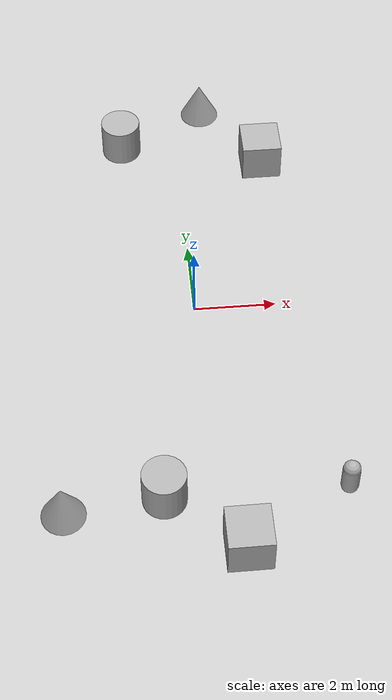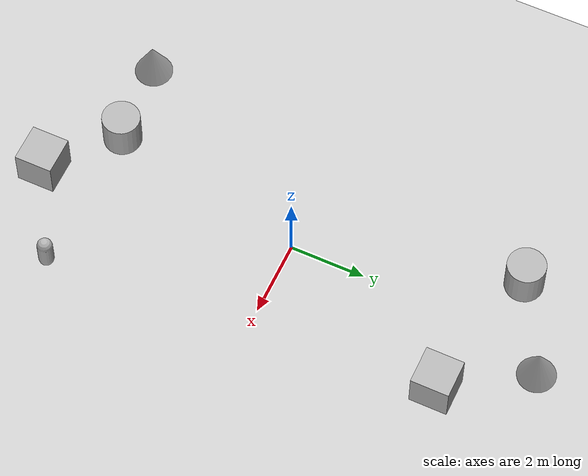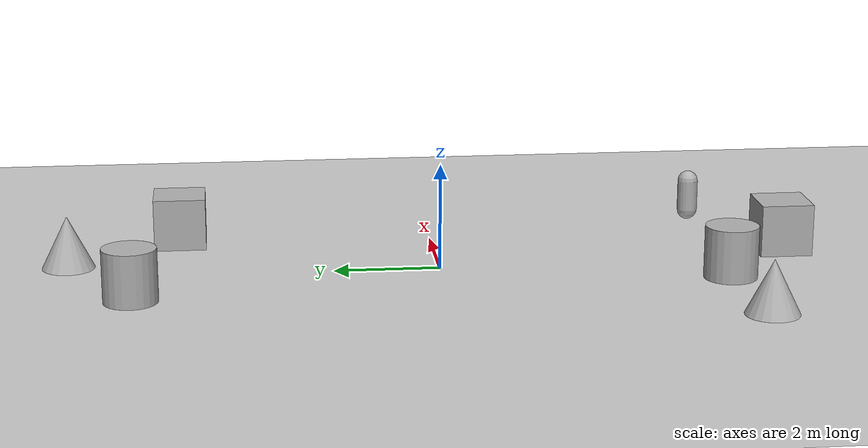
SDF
<sdf version="1.10">
 <world name="empty">
  <physics name="1ms" type="ignored">
   <max_step_size>0.001</max_step_size>
   <real_time_factor>1</real_time_factor>
   <real_time_update_rate>1000</real_time_update_rate>
  </physics>
  <plugin name="gz::sim::systems::Physics" filename="gz-sim-physics-system"/>
  <plugin name="gz::sim::systems::UserCommands" filename="gz-sim-user-commands-system"/>
  <plugin name="gz::sim::systems::SceneBroadcaster" filename="gz-sim-scene-broadcaster-system"/>
  <plugin name="gz::sim::systems::Contact" filename="gz-sim-contact-system"/>
  <plugin filename="gz-sim-sensors-system" name="gz::sim::systems::Sensors">
   <render_engine>ogre2</render_engine>
  </plugin>
  <plugin filename="gz-sim-imu-system" name="gz::sim::systems::Imu"/>
  <gravity>0 0 -9.8000000000000007</gravity>
  <magnetic_field>5.5644999999999998e-06 2.2875799999999999e-05 -4.2388400000000002e-05</magnetic_field>
  <atmosphere type="adiabatic"/>
  <scene>
   <ambient>0.400000006 0.400000006 0.400000006 1</ambient>
   <background>0.699999988 0.699999988 0.699999988 1</background>
   <shadows>true</shadows>
  </scene>
  <model name="ground_plane">
   <static>true</static>
   <link name="link">
    <collision name="collision">
     <geometry><plane><normal>0 0 1</normal><size>100 100</size></plane></geometry>
    </collision>
    <visual name="visual">
     <geometry><plane><normal>0 0 1</normal><size>100 100</size></plane></geometry>
     <material>
      <ambient>0.800000012 0.800000012 0.800000012 1</ambient>
      <diffuse>0.800000012 0.800000012 0.800000012 1</diffuse>
      <specular>0.800000012 0.800000012 0.800000012 1</specular>
     </material>
    </visual>
    <inertial>
     <mass>1</mass>
     <inertia><ixx>1</ixx><ixy>0</ixy><ixz>0</ixz><iyy>1</iyy><iyz>0</iyz><izz>1</izz></inertia>
    </inertial>
   </link>
  </model>
  <model name="box">
   <pose>0.58304128577825676 -6.7004749558493346 0.5 0 0 0</pose>
   <link name="box_link">
    <inertial>
     <inertia><ixx>0.16666</ixx><ixy>0</ixy><ixz>0</ixz><iyy>0.16666</iyy><iyz>0</iyz><izz>0.16666</izz></inertia>
     <mass>1</mass>
    </inertial>
    <collision name="box_collision"><geometry><box><size>1 1 1</size></box></geometry></collision>
    <visual name="box_visual">
     <geometry><box><size>1 1 1</size></box></geometry>
     <material>
      <ambient>0.300000012 0.300000012 0.300000012 1</ambient>
      <diffuse>0.699999988 0.699999988 0.699999988 1</diffuse>
      <specular>1 1 1 1</specular>
     </material>
    </visual>
   </link>
   <static>false</static>
  </model>
  <model name="cylinder">
   <pose>-1.475265950712628 5.7270640054151478 0.5 0 0 0</pose>
   <link name="cylinder_link">
    <inertial>
     <inertia>
      <ixx>0.14580000000000001</ixx>
      <ixy>0</ixy>
      <ixz>0</ixz>
      <iyy>0.14580000000000001</iyy>
      <iyz>0</iyz>
      <izz>0.125</izz>
     </inertia>
     <mass>1</mass>
    </inertial>
    <collision name="cylinder_collision">
     <geometry><cylinder><radius>0.5</radius><length>1</length></cylinder></geometry>
    </collision>
    <visual name="cylinder_visual">
     <geometry><cylinder><radius>0.5</radius><length>1</length></cylinder></geometry>
     <material>
      <ambient>0.300000012 0.300000012 0.300000012 1</ambient>
      <diffuse>0.699999988 0.699999988 0.699999988 1</diffuse>
      <specular>1 1 1 1</specular>
     </material>
    </visual>
   </link>
   <static>false</static>
  </model>
  <model name="capsule">
   <pose>2.9580116087137718 -5.3920647254349863 0.5 0 0 0</pose>
   <link name="capsule_link">
    <inertial>
     <inertia>
      <ixx>0.074153999999999998</ixx>
      <ixy>0</ixy>
      <ixz>0</ixz>
      <iyy>0.074153999999999998</iyy>
      <iyz>0</iyz>
      <izz>0.018769000000000001</izz>
     </inertia>
     <mass>1</mass>
    </inertial>
    <collision name="capsule_collision">
     <geometry>
      <capsule><radius>0.20000000000000001</radius><length>0.59999999999999998</length></capsule>
     </geometry>
    </collision>
    <visual name="capsule_visual">
     <geometry>
      <capsule><radius>0.20000000000000001</radius><length>0.59999999999999998</length></capsule>
     </geometry>
     <material>
      <ambient>0.300000012 0.300000012 0.300000012 1</ambient>
      <diffuse>0.699999988 0.699999988 0.699999988 1</diffuse>
      <specular>1 1 1 1</specular>
     </material>
    </visual>
   </link>
   <static>false</static>
  </model>
  <model name="cylinder_0">
   <pose>-1.1086556738757096 -5.3043384252932668 0.5 0 0 0</pose>
   <link name="cylinder_link">
    <inertial>
     <inertia>
      <ixx>0.14580000000000001</ixx>
      <ixy>0</ixy>
      <ixz>0</ixz>
      <iyy>0.14580000000000001</iyy>
      <iyz>0</iyz>
      <izz>0.125</izz>
     </inertia>
     <mass>1</mass>
    </inertial>
    <collision name="cylinder_collision">
     <geometry><cylinder><radius>0.5</radius><length>1</length></cylinder></geometry>
    </collision>
    <visual name="cylinder_visual">
     <geometry><cylinder><radius>0.5</radius><length>1</length></cylinder></geometry>
     <material>
      <ambient>0.300000012 0.300000012 0.300000012 1</ambient>
      <diffuse>0.699999988 0.699999988 0.699999988 1</diffuse>
      <specular>1 1 1 1</specular>
     </material>
    </visual>
   </link>
   <static>false</static>
  </model>
  <model name="box_0">
   <pose>2.1621005525115979 4.8869179802820177 0.5 0 0 0</pose>
   <link name="box_link">
    <inertial>
     <inertia><ixx>0.16666</ixx><ixy>0</ixy><ixz>0</ixz><iyy>0.16666</iyy><iyz>0</iyz><izz>0.16666</izz></inertia>
     <mass>1</mass>
    </inertial>
    <collision name="box_collision"><geometry><box><size>1 1 1</size></box></geometry></collision>
    <visual name="box_visual">
     <geometry><box><size>1 1 1</size></box></geometry>
     <material>
      <ambient>0.300000012 0.300000012 0.300000012 1</ambient>
      <diffuse>0.699999988 0.699999988 0.699999988 1</diffuse>
      <specular>1 1 1 1</specular>
     </material>
    </visual>
   </link>
   <static>false</static>
  </model>
  <model name="cone">
   <pose>-3.3279696207875604 -5.5096786027343576 0.5 0 0 0</pose>
   <link name="cone_link">
    <inertial>
     <inertia>
      <ixx>0.074999999999999997</ixx>
      <ixy>0</ixy>
      <ixz>0</ixz>
      <iyy>0.074999999999999997</iyy>
      <iyz>0</iyz>
      <izz>0.074999999999999997</izz>
     </inertia>
     <mass>1</mass>
    </inertial>
    <collision name="cone_collision">
     <geometry><cone><radius>0.5</radius><length>1</length></cone></geometry>
    </collision>
    <visual name="cone_visual">
     <geometry><cone><radius>0.5</radius><length>1</length></cone></geometry>
     <material>
      <ambient>0.300000012 0.300000012 0.300000012 1</ambient>
      <diffuse>0.699999988 0.699999988 0.699999988 1</diffuse>
      <specular>1 1 1 1</specular>
     </material>
    </visual>
   </link>
   <static>false</static>
  </model>
  <model name="cone_0">
   <pose>0.73067984120340945 6.9660677593729305 0.5 0 0 0</pose>
   <link name="cone_link">
    <inertial>
     <inertia>
      <ixx>0.074999999999999997</ixx>
      <ixy>0</ixy>
      <ixz>0</ixz>
      <iyy>0.074999999999999997</iyy>
      <iyz>0</iyz>
      <izz>0.074999999999999997</izz>
     </inertia>
     <mass>1</mass>
    </inertial>
    <collision name="cone_collision">
     <geometry><cone><radius>0.5</radius><length>1</length></cone></geometry>
    </collision>
    <visual name="cone_visual">
     <geometry><cone><radius>0.5</radius><length>1</length></cone></geometry>
     <material>
      <ambient>0.300000012 0.300000012 0.300000012 1</ambient>
      <diffuse>0.699999988 0.699999988 0.699999988 1</diffuse>
      <specular>1 1 1 1</specular>
     </material>
    </visual>
   </link>
   <static>false</static>
  </model>
  <light name="sun" type="directional">
   <pose>0 0 10 0 0 0</pose>
   <intensity>1</intensity>
   <direction>-0.5 0.10000000000000001 -0.90000000000000002</direction>
   <diffuse>0.800000012 0.800000012 0.800000012 1</diffuse>
   <specular>0.200000003 0.200000003 0.200000003 1</specular>
   <attenuation>
    <range>1000</range>
    <linear>0.01</linear>
    <constant>0.90000000000000002</constant>
    <quadratic>0.001</quadratic>
   </attenuation>
   <spot><inner_angle>0</inner_angle><outer_angle>0</outer_angle><falloff>0</falloff></spot>
  </light>
 </world>
</sdf>
